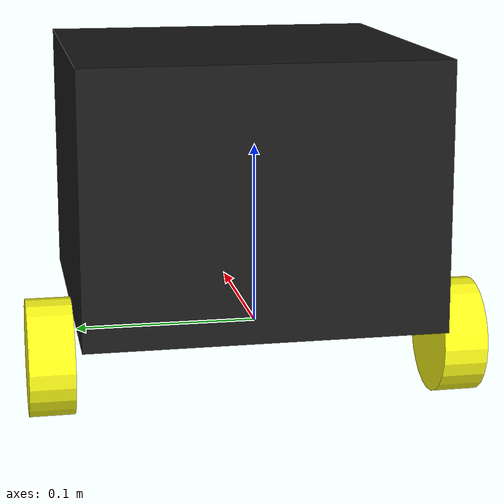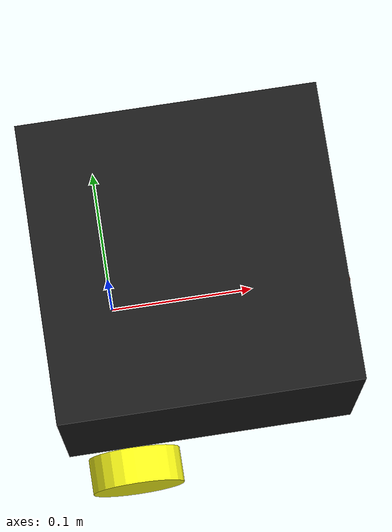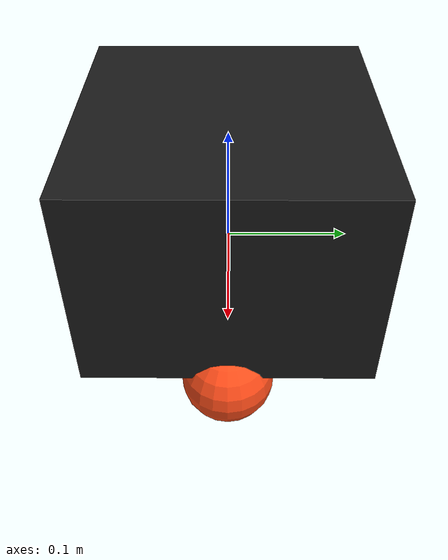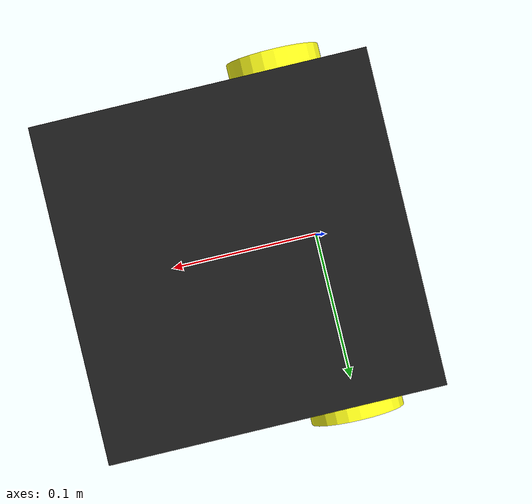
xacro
<?xml version="1.0"?>
<robot xmlns:xacro="http://www.ros.org/wiki/xacro" >

    <xacro:include filename="inertial_macros.xacro"/>

    <material name="white">
        <color rgba="1 1 1 1"/>
    </material>

    <material name="orange">
        <color rgba="1 0.3 0.1 1"/>
    </material>

    <material name="yellow">
        <color rgba="1 1 0.1 1"/>
    </material>

    <material name="blue">
            <color rgba="0.2 0.2 1 1"/>
    </material>

    <material name="black">
            <color rgba="0.1 0.1 0.1 1"/>
    </material>

<!--BASE LINK-->

    <link name="base_link">

    </link>

<!--CHASSI LINK-->

    <joint name="chassis_joint" type="fixed">
        <parent link="base_link"/>
        <child link="chassis"/>
        <origin xyz="-0.045 0 0"/>
    </joint>

    <link name="chassis">
        <visual>
            <origin xyz="0.10 0 0.075"/>
            <geometry>
                <box size="0.2 0.2 0.15"/>
            </geometry>
            <material name="black"/>
        </visual>

            <collision>
                <origin xyz="0.10 0 0.075"/>
                <geometry>
                    <box size="0.2 0.2 0.15"/>
                </geometry>
            </collision>
            <xacro:inertial_box mass="0.5" x="0.2" y="0.2" z="0.15">
                <origin xyz="0.10 0 0.075" rpy="0 0 0"/>
            </xacro:inertial_box>
    </link>

<!--LEFT WHEEL LINK-->

<joint name="left_wheel_joint" type="continuous">
    <parent link="base_link"/>
    <child link="left_wheel"/>
    <origin xyz="0 0.115 -0.015" rpy="-${pi/2} 0 0"/>
    <axis xyz="0 0 1"/>
</joint>

<link name="left_wheel">
    <visual>
        <geometry>
            <cylinder radius="0.0325" length="0.025"/>
        </geometry>
        <material name="yellow"/>
    </visual>

        <collision>
            <geometry>
                <cylinder radius="0.0325" length="0.025"/>
            </geometry>
        </collision>

            <xacro:inertial_cylinder mass="0.1" length="0.025" radius="0.0325" >
                    <origin xyz="0 0 0" rpy="0 0 0"/>
            </xacro:inertial_cylinder>
</link>

<!--RIGTH WHEEL LINK-->

<joint name="rigth_wheel_joint" type="continuous">
    <parent link="base_link"/>
    <child link="rigth_wheel"/>
    <origin xyz="0 -0.115 -0.015" rpy="${pi/2} 0 0"/>
    <axis xyz="0 0 -1"/>
</joint>

<link name="rigth_wheel">
    <visual>
        <geometry>
            <cylinder radius="0.0325" length="0.025"/>
        </geometry>
        <material name="yellow"/>
    </visual>

        <collision>
            <geometry>
                <cylinder radius="0.0325" length="0.025"/>
            </geometry>
        </collision>

            <xacro:inertial_cylinder mass="0.1" length="0.025" radius="0.0325" >
                    <origin xyz="0 0 0" rpy="0 0 0"/>
            </xacro:inertial_cylinder>
</link>

<!--CASTER WHEEL LINK-->

<joint name="caster_wheel_joint" type="fixed">
    <origin xyz="0.185 0.0 -0.015" />
    <parent link="chassis"/>
    <child link="caster_wheel"/>
</joint>

<link name="caster_wheel">
    <visual>
        <geometry>
            <sphere radius="0.0325"/>
        </geometry>
        <material name="orange"/>
    </visual>

        <collision>
            <geometry>
                <sphere radius="0.0325"/>
            </geometry>
        </collision>

            <xacro:inertial_sphere mass="0.1"  radius="0.0325" >
                    <origin xyz="0 0 0" rpy="0 0 0"/>
            </xacro:inertial_sphere>

</link>

</robot>
